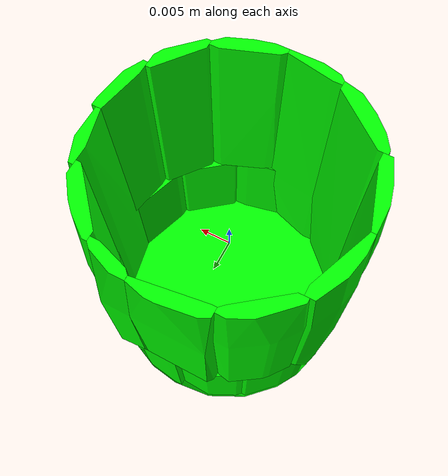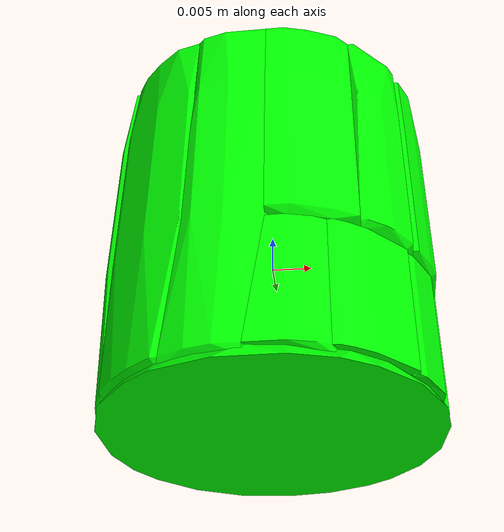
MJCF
<mujoco model="shapenetsem21">
  <asset>
    <mesh file="meshes/shapenetsem21/shapenetsem21_0.stl" name="shapenetsem21_0" scale="1 1 1"/>
    <mesh file="meshes/shapenetsem21/shapenetsem21_1.stl" name="shapenetsem21_1" scale="1 1 1"/>
    <mesh file="meshes/shapenetsem21/shapenetsem21_2.stl" name="shapenetsem21_2" scale="1 1 1"/>
    <mesh file="meshes/shapenetsem21/shapenetsem21_3.stl" name="shapenetsem21_3" scale="1 1 1"/>
    <mesh file="meshes/shapenetsem21/shapenetsem21_4.stl" name="shapenetsem21_4" scale="1 1 1"/>
    <mesh file="meshes/shapenetsem21/shapenetsem21_5.stl" name="shapenetsem21_5" scale="1 1 1"/>
    <mesh file="meshes/shapenetsem21/shapenetsem21_6.stl" name="shapenetsem21_6" scale="1 1 1"/>
    <mesh file="meshes/shapenetsem21/shapenetsem21_7.stl" name="shapenetsem21_7" scale="1 1 1"/>
    <mesh file="meshes/shapenetsem21/shapenetsem21_8.stl" name="shapenetsem21_8" scale="1 1 1"/>
    <mesh file="meshes/shapenetsem21/shapenetsem21_9.stl" name="shapenetsem21_9" scale="1 1 1"/>
    <mesh file="meshes/shapenetsem21/shapenetsem21_10.stl" name="shapenetsem21_10" scale="1 1 1"/>
    <mesh file="meshes/shapenetsem21/shapenetsem21_11.stl" name="shapenetsem21_11" scale="1 1 1"/>
    <mesh file="meshes/shapenetsem21/shapenetsem21_12.stl" name="shapenetsem21_12" scale="1 1 1"/>
    <mesh file="meshes/shapenetsem21/shapenetsem21_13.stl" name="shapenetsem21_13" scale="1 1 1"/>
    <mesh file="meshes/shapenetsem21/shapenetsem21_14.stl" name="shapenetsem21_14" scale="1 1 1"/>
    <mesh file="meshes/shapenetsem21/shapenetsem21_15.stl" name="shapenetsem21_15" scale="1 1 1"/>
    <mesh file="meshes/shapenetsem21/shapenetsem21_16.stl" name="shapenetsem21_16" scale="1 1 1"/>
    <mesh file="meshes/shapenetsem21/shapenetsem21_17.stl" name="shapenetsem21_17" scale="1 1 1"/>
    <mesh file="meshes/shapenetsem21/shapenetsem21_18.stl" name="shapenetsem21_18" scale="1 1 1"/>
    <mesh file="meshes/shapenetsem21/shapenetsem21_19.stl" name="shapenetsem21_19" scale="1 1 1"/>
  </asset>
  <worldbody>
    <body>
      <body name="collision">
        <geom pos="0 0 0" mesh="shapenetsem21_0" type="mesh" solimp="0.998 0.998 0.001" solref="0.001 1" density="100" friction="0.95 0.3 0.1" rgba="0 1 0 1" group="1" condim="4"/>
        <geom pos="0 0 0" mesh="shapenetsem21_1" type="mesh" solimp="0.998 0.998 0.001" solref="0.001 1" density="100" friction="0.95 0.3 0.1" rgba="0 1 0 1" group="1" condim="4"/>
        <geom pos="0 0 0" mesh="shapenetsem21_2" type="mesh" solimp="0.998 0.998 0.001" solref="0.001 1" density="100" friction="0.95 0.3 0.1" rgba="0 1 0 1" group="1" condim="4"/>
        <geom pos="0 0 0" mesh="shapenetsem21_3" type="mesh" solimp="0.998 0.998 0.001" solref="0.001 1" density="100" friction="0.95 0.3 0.1" rgba="0 1 0 1" group="1" condim="4"/>
        <geom pos="0 0 0" mesh="shapenetsem21_4" type="mesh" solimp="0.998 0.998 0.001" solref="0.001 1" density="100" friction="0.95 0.3 0.1" rgba="0 1 0 1" group="1" condim="4"/>
        <geom pos="0 0 0" mesh="shapenetsem21_5" type="mesh" solimp="0.998 0.998 0.001" solref="0.001 1" density="100" friction="0.95 0.3 0.1" rgba="0 1 0 1" group="1" condim="4"/>
        <geom pos="0 0 0" mesh="shapenetsem21_6" type="mesh" solimp="0.998 0.998 0.001" solref="0.001 1" density="100" friction="0.95 0.3 0.1" rgba="0 1 0 1" group="1" condim="4"/>
        <geom pos="0 0 0" mesh="shapenetsem21_7" type="mesh" solimp="0.998 0.998 0.001" solref="0.001 1" density="100" friction="0.95 0.3 0.1" rgba="0 1 0 1" group="1" condim="4"/>
        <geom pos="0 0 0" mesh="shapenetsem21_8" type="mesh" solimp="0.998 0.998 0.001" solref="0.001 1" density="100" friction="0.95 0.3 0.1" rgba="0 1 0 1" group="1" condim="4"/>
        <geom pos="0 0 0" mesh="shapenetsem21_9" type="mesh" solimp="0.998 0.998 0.001" solref="0.001 1" density="100" friction="0.95 0.3 0.1" rgba="0 1 0 1" group="1" condim="4"/>
        <geom pos="0 0 0" mesh="shapenetsem21_10" type="mesh" solimp="0.998 0.998 0.001" solref="0.001 1" density="100" friction="0.95 0.3 0.1" rgba="0 1 0 1" group="1" condim="4"/>
        <geom pos="0 0 0" mesh="shapenetsem21_11" type="mesh" solimp="0.998 0.998 0.001" solref="0.001 1" density="100" friction="0.95 0.3 0.1" rgba="0 1 0 1" group="1" condim="4"/>
        <geom pos="0 0 0" mesh="shapenetsem21_12" type="mesh" solimp="0.998 0.998 0.001" solref="0.001 1" density="100" friction="0.95 0.3 0.1" rgba="0 1 0 1" group="1" condim="4"/>
        <geom pos="0 0 0" mesh="shapenetsem21_13" type="mesh" solimp="0.998 0.998 0.001" solref="0.001 1" density="100" friction="0.95 0.3 0.1" rgba="0 1 0 1" group="1" condim="4"/>
        <geom pos="0 0 0" mesh="shapenetsem21_14" type="mesh" solimp="0.998 0.998 0.001" solref="0.001 1" density="100" friction="0.95 0.3 0.1" rgba="0 1 0 1" group="1" condim="4"/>
        <geom pos="0 0 0" mesh="shapenetsem21_15" type="mesh" solimp="0.998 0.998 0.001" solref="0.001 1" density="100" friction="0.95 0.3 0.1" rgba="0 1 0 1" group="1" condim="4"/>
        <geom pos="0 0 0" mesh="shapenetsem21_16" type="mesh" solimp="0.998 0.998 0.001" solref="0.001 1" density="100" friction="0.95 0.3 0.1" rgba="0 1 0 1" group="1" condim="4"/>
        <geom pos="0 0 0" mesh="shapenetsem21_17" type="mesh" solimp="0.998 0.998 0.001" solref="0.001 1" density="100" friction="0.95 0.3 0.1" rgba="0 1 0 1" group="1" condim="4"/>
        <geom pos="0 0 0" mesh="shapenetsem21_18" type="mesh" solimp="0.998 0.998 0.001" solref="0.001 1" density="100" friction="0.95 0.3 0.1" rgba="0 1 0 1" group="1" condim="4"/>
        <geom pos="0 0 0" mesh="shapenetsem21_19" type="mesh" solimp="0.998 0.998 0.001" solref="0.001 1" density="100" friction="0.95 0.3 0.1" rgba="0 1 0 1" group="1" condim="4"/>
      </body>
      <body name="visual">
        <geom pos="0 0 0" mesh="shapenetsem21_0" type="mesh" rgba="0 1 0 1" conaffinity="0" contype="0" group="0" mass="0.0001"/>
        <geom pos="0 0 0" mesh="shapenetsem21_1" type="mesh" rgba="0 1 0 1" conaffinity="0" contype="0" group="0" mass="0.0001"/>
        <geom pos="0 0 0" mesh="shapenetsem21_2" type="mesh" rgba="0 1 0 1" conaffinity="0" contype="0" group="0" mass="0.0001"/>
        <geom pos="0 0 0" mesh="shapenetsem21_3" type="mesh" rgba="0 1 0 1" conaffinity="0" contype="0" group="0" mass="0.0001"/>
        <geom pos="0 0 0" mesh="shapenetsem21_4" type="mesh" rgba="0 1 0 1" conaffinity="0" contype="0" group="0" mass="0.0001"/>
        <geom pos="0 0 0" mesh="shapenetsem21_5" type="mesh" rgba="0 1 0 1" conaffinity="0" contype="0" group="0" mass="0.0001"/>
        <geom pos="0 0 0" mesh="shapenetsem21_6" type="mesh" rgba="0 1 0 1" conaffinity="0" contype="0" group="0" mass="0.0001"/>
        <geom pos="0 0 0" mesh="shapenetsem21_7" type="mesh" rgba="0 1 0 1" conaffinity="0" contype="0" group="0" mass="0.0001"/>
        <geom pos="0 0 0" mesh="shapenetsem21_8" type="mesh" rgba="0 1 0 1" conaffinity="0" contype="0" group="0" mass="0.0001"/>
        <geom pos="0 0 0" mesh="shapenetsem21_9" type="mesh" rgba="0 1 0 1" conaffinity="0" contype="0" group="0" mass="0.0001"/>
        <geom pos="0 0 0" mesh="shapenetsem21_10" type="mesh" rgba="0 1 0 1" conaffinity="0" contype="0" group="0" mass="0.0001"/>
        <geom pos="0 0 0" mesh="shapenetsem21_11" type="mesh" rgba="0 1 0 1" conaffinity="0" contype="0" group="0" mass="0.0001"/>
        <geom pos="0 0 0" mesh="shapenetsem21_12" type="mesh" rgba="0 1 0 1" conaffinity="0" contype="0" group="0" mass="0.0001"/>
        <geom pos="0 0 0" mesh="shapenetsem21_13" type="mesh" rgba="0 1 0 1" conaffinity="0" contype="0" group="0" mass="0.0001"/>
        <geom pos="0 0 0" mesh="shapenetsem21_14" type="mesh" rgba="0 1 0 1" conaffinity="0" contype="0" group="0" mass="0.0001"/>
        <geom pos="0 0 0" mesh="shapenetsem21_15" type="mesh" rgba="0 1 0 1" conaffinity="0" contype="0" group="0" mass="0.0001"/>
        <geom pos="0 0 0" mesh="shapenetsem21_16" type="mesh" rgba="0 1 0 1" conaffinity="0" contype="0" group="0" mass="0.0001"/>
        <geom pos="0 0 0" mesh="shapenetsem21_17" type="mesh" rgba="0 1 0 1" conaffinity="0" contype="0" group="0" mass="0.0001"/>
        <geom pos="0 0 0" mesh="shapenetsem21_18" type="mesh" rgba="0 1 0 1" conaffinity="0" contype="0" group="0" mass="0.0001"/>
        <geom pos="0 0 0" mesh="shapenetsem21_19" type="mesh" rgba="0 1 0 1" conaffinity="0" contype="0" group="0" mass="0.0001"/>
      </body>
      <site rgba="0 0 0 0" size="0.005" pos="0 0 -0.06" name="bottom_site"/>
      <site rgba="0 0 0 0" size="0.005" pos="0 0 0.04" name="top_site"/>
      <site rgba="0 0 0 0" size="0.005" pos="0.025 0.025 0" name="horizontal_radius_site"/>
    </body>
  </worldbody>
</mujoco>
